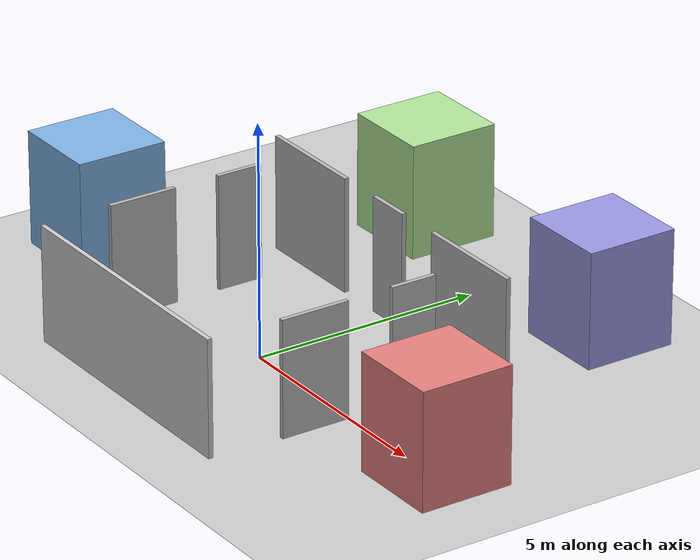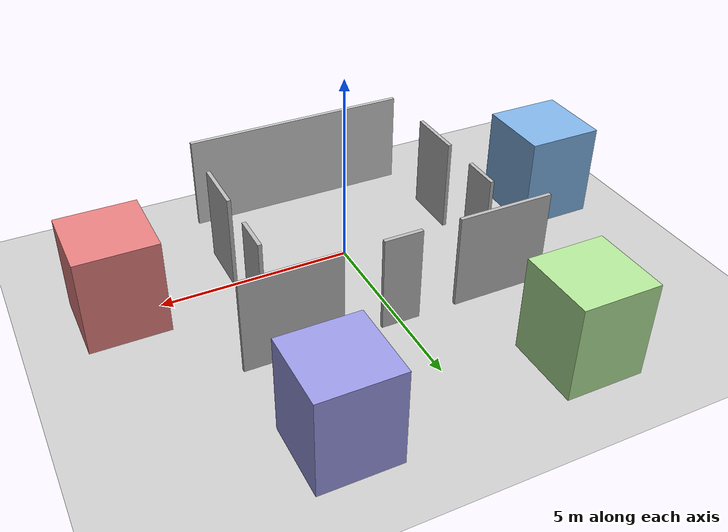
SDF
<?xml version="1.0" ?>
<sdf version="1.6">
  <world name="mahallahroom">

    <!-- Environment -->
    <gravity>0 0 -9.8</gravity>
    <include><uri>model://sun</uri></include>
    <include><uri>model://ground_plane</uri></include>

    <!-- Lobby Walls -->
    <!-- Back wall -->
    <model name="lobby_back_wall">
      <static>true</static>
      <link name="link">
        <collision name="collision">
          <geometry><box><size>6 0.1 2.5</size></box></geometry>
        </collision>
        <visual name="visual">
          <geometry><box><size>6 0.1 2.5</size></box></geometry>
          <material><ambient>0.8 0.8 0.8 1</ambient></material>
        </visual>
        <pose>0 -3.05 1.25 0 0 0</pose>
      </link>
    </model>

    <!-- Front wall: center divider + two doors -->
    <model name="lobby_front_wall_middle">
      <static>true</static>
      <link name="link">
        <collision name="collision">
          <geometry><box><size>1 0.1 2.5</size></box></geometry>
        </collision>
        <visual name="visual">
          <geometry><box><size>1 0.1 2.5</size></box></geometry>
        </visual>
        <pose>0 3.05 1.25 0 0 0</pose>
      </link>
    </model>

    <model name="lobby_front_wall_left">
      <static>true</static>
      <link name="link">
        <collision name="collision">
          <geometry><box><size>2.5 0.1 2.5</size></box></geometry>
        </collision>
        <visual name="visual">
          <geometry><box><size>2.5 0.1 2.5</size></box></geometry>
        </visual>
        <pose>-2.75 3.05 1.25 0 0 0</pose>
      </link>
    </model>

    <model name="lobby_front_wall_right">
      <static>true</static>
      <link name="link">
        <collision name="collision">
          <geometry><box><size>2.5 0.1 2.5</size></box></geometry>
        </collision>
        <visual name="visual">
          <geometry><box><size>2.5 0.1 2.5</size></box></geometry>
        </visual>
        <pose>2.75 3.05 1.25 0 0 0</pose>
      </link>
    </model>

    <!-- Left wall with front-corner door -->
    <model name="lobby_left_wall_back">
      <static>true</static>
      <link name="link">
        <collision name="collision">
          <geometry><box><size>0.1 1.5 2.5</size></box></geometry>
        </collision>
        <visual name="visual">
          <geometry><box><size>0.1 1.5 2.5</size></box></geometry>
        </visual>
        <pose>-3.05 -0.75 1.25 0 0 0</pose>
      </link>
    </model>

    <model name="lobby_left_wall_front">
      <static>true</static>
      <link name="link">
        <collision name="collision">
          <geometry><box><size>0.1 1 2.5</size></box></geometry>
        </collision>
        <visual name="visual">
          <geometry><box><size>0.1 1 2.5</size></box></geometry>
        </visual>
        <pose>-3.05 1.5 1.25 0 0 0</pose>
      </link>
    </model>

    <!-- Right wall with front-corner door -->
    <model name="lobby_right_wall_back">
      <static>true</static>
      <link name="link">
        <collision name="collision">
          <geometry><box><size>0.1 1.5 2.5</size></box></geometry>
        </collision>
        <visual name="visual">
          <geometry><box><size>0.1 1.5 2.5</size></box></geometry>
        </visual>
        <pose>3.05 -0.75 1.25 0 0 0</pose>
      </link>
    </model>

    <model name="lobby_right_wall_front">
      <static>true</static>
      <link name="link">
        <collision name="collision">
          <geometry><box><size>0.1 1 2.5</size></box></geometry>
        </collision>
        <visual name="visual">
          <geometry><box><size>0.1 1 2.5</size></box></geometry>
        </visual>
        <pose>3.05 1.5 1.25 0 0 0</pose>
      </link>
    </model>

    <!-- Compartments -->
    <!-- Left -->
    <model name="compartment1">
      <static>true</static>
      <link name="link">
        <collision name="collision">
          <geometry><box><size>2 2 2.5</size></box></geometry>
        </collision>
        <visual name="visual">
          <geometry><box><size>2 2 2.5</size></box></geometry>
          <material><ambient>0.5 0.7 0.9 1</ambient></material>
        </visual>
        <pose>-6 0 1.25 0 0 0</pose>
      </link>
    </model>

    <!-- Right -->
    <model name="compartment2">
      <static>true</static>
      <link name="link">
        <collision name="collision">
          <geometry><box><size>2 2 2.5</size></box></geometry>
        </collision>
        <visual name="visual">
          <geometry><box><size>2 2 2.5</size></box></geometry>
          <material><ambient>0.9 0.5 0.5 1</ambient></material>
        </visual>
        <pose>6 0 1.25 0 0 0</pose>
      </link>
    </model>

    <!-- Front Left -->
    <model name="compartment3">
      <static>true</static>
      <link name="link">
        <collision name="collision">
          <geometry><box><size>2 2 2.5</size></box></geometry>
        </collision>
        <visual name="visual">
          <geometry><box><size>2 2 2.5</size></box></geometry>
          <material><ambient>0.7 0.9 0.6 1</ambient></material>
        </visual>
        <pose>-3 6 1.25 0 0 0</pose>
      </link>
    </model>

    <!-- Front Right -->
    <model name="compartment4">
      <static>true</static>
      <link name="link">
        <collision name="collision">
          <geometry><box><size>2 2 2.5</size></box></geometry>
        </collision>
        <visual name="visual">
          <geometry><box><size>2 2 2.5</size></box></geometry>
          <material><ambient>0.6 0.6 0.9 1</ambient></material>
        </visual>
        <pose>3 6 1.25 0 0 0</pose>
      </link>
    </model>

  </world>
</sdf>
